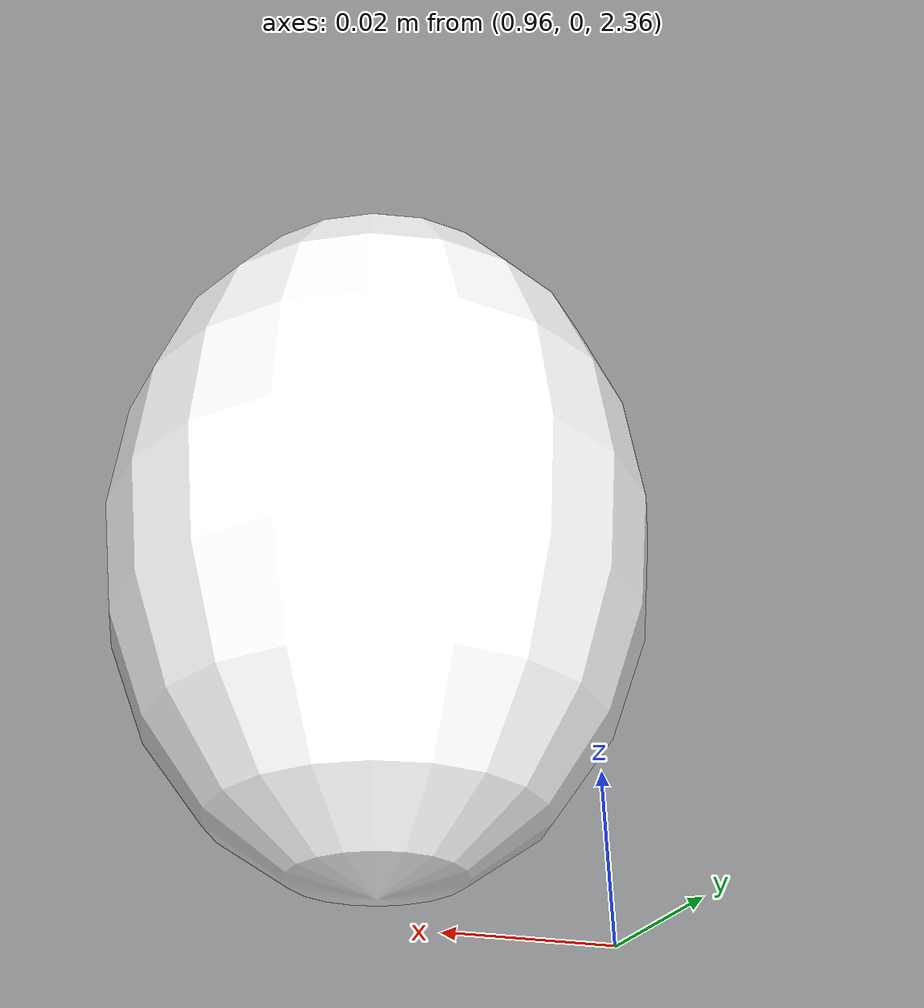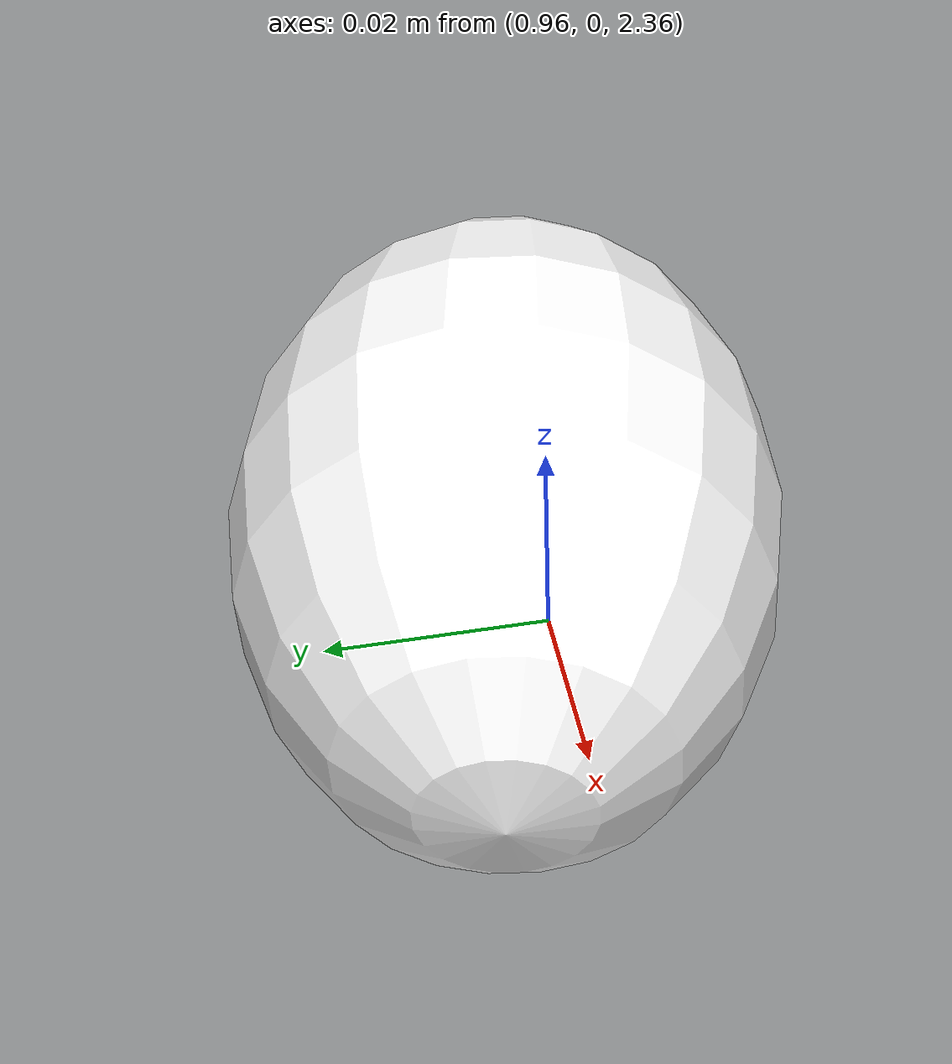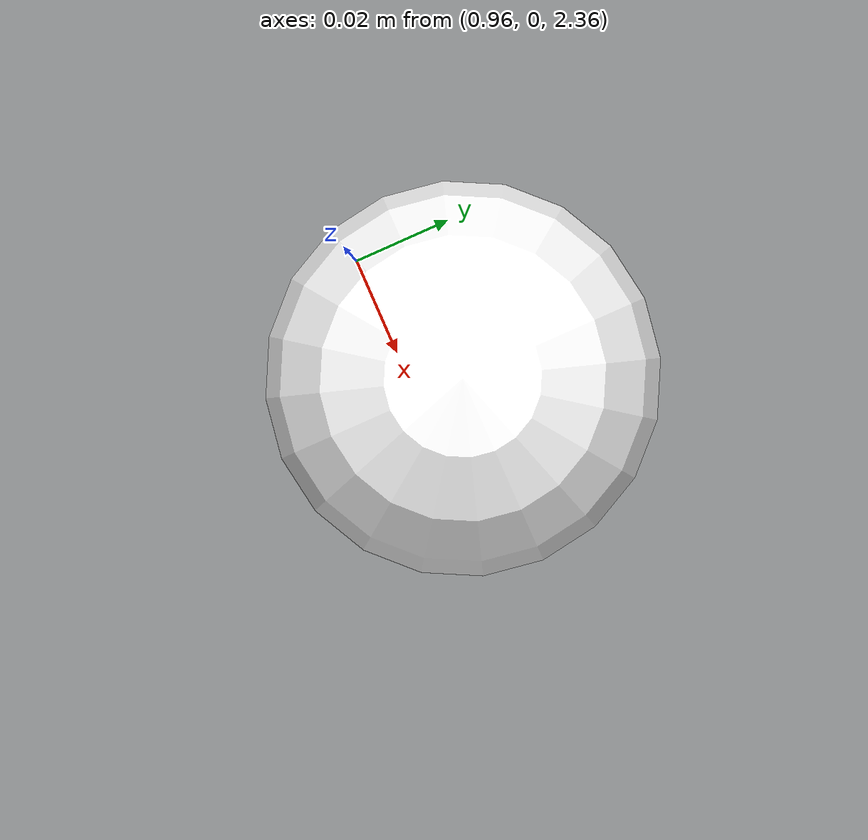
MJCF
<mujoco>
    <asset>

        <material name="material:object" specular="1" shininess="0.3" reflectance="0"></material>
        <material name="material:hidden" specular="1" shininess="0.3" reflectance="0"></material>
        <material name="material:target" specular="1" shininess="0.3" reflectance="0" rgba="1 1 1 0.5"></material>
    </asset>

    <worldbody>
        <body name="yum1" pos="0.99 0.01 2.4">
            <geom name="yum1" type="ellipsoid" size="0.03 0.03 0.04" material="material:object" condim="4"></geom>
            <geom name="yum1_hidden" type="ellipsoid" size="0.029 0.029 0.03" material="material:hidden" condim="4" contype="0" conaffinity="0" mass="0"></geom>
            <site name="yum1:center" pos="0 0 0" rgba="1 0 0 0" size="0.01 0.01 0.01"></site>
            <joint name="yum1:joint" type="free" damping="0.01" limited="false"></joint>
        </body>
    </worldbody>
</mujoco>
